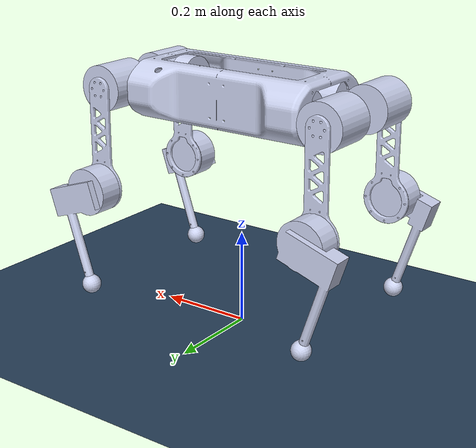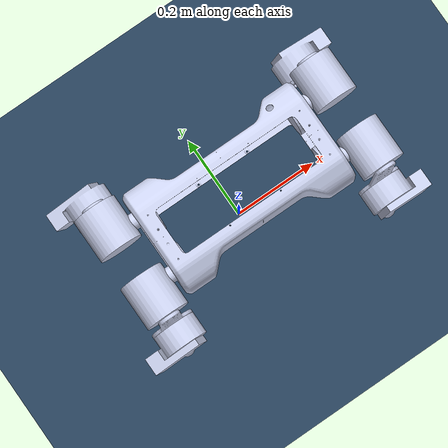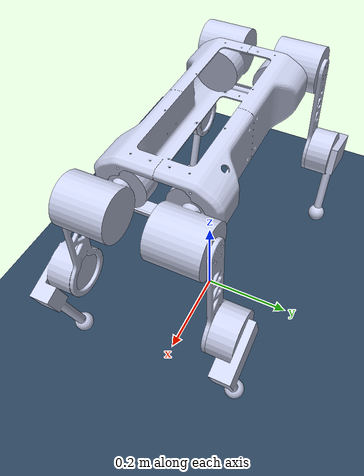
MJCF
<mujoco model="bigreddog_plus_scene">
  <include file="bigreddog_plus.xml"/>

  <statistic center="0 0 0.25" extent="1.2"/>

  <visual>
    <headlight diffuse="0.6 0.6 0.6" ambient="0.3 0.3 0.3" specular="0 0 0"/>
    <rgba haze="0.15 0.25 0.35 1"/>
    <global azimuth="90" elevation="-10"/>
  </visual>

  <asset>
    <texture type="skybox" builtin="gradient" rgb1="0.3 0.5 0.7" rgb2="0 0 0"
             width="512" height="3072"/>
    <!-- Matches the training scene's groundplane texture/material. -->
    <texture name="groundplane" type="2d" builtin="checker" mark="edge"
             rgb1="0.2 0.3 0.4" rgb2="0.1 0.2 0.3" markrgb="0.8 0.8 0.8"
             width="300" height="300"/>
    <material name="groundplane" texture="groundplane" texuniform="true"
              texrepeat="4 4" reflectance="0.2"/>
  </asset>

  <worldbody>
    <light name="sun" mode="fixed" directional="true" castshadow="true"
           pos="0 0 1.5" dir="0 0 -1"/>
    <!-- Named `terrain` like the training ground plane. The feet carry
         priority 1 with friction 0.6, so they set the contact friction. -->
    <geom name="terrain" type="plane" size="0 0 0.05" material="groundplane"
          condim="3" friction="0.6"/>
  </worldbody>

  <keyframe>
    <key name="home"
         qpos="0 0 0.5
               1 0 0 0
               -0.125 0.6 -1.0
                0.125 0.6 -1.0
               -0.125 -0.6 1.0
                0.125 -0.6 1.0"/>
  </keyframe>
</mujoco>

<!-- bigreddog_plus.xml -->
<mujoco model="bigreddog_plus">
  <compiler angle="radian" meshdir="meshes" autolimits="true"/>

  <default>
    <default class="bigreddog_plus">
      <geom friction="0.4" margin="0.001" condim="1"/>
      <joint damping="0.1" armature="0.01" frictionloss="0.2"/>
      <default class="visual">
        <geom type="mesh" contype="0" conaffinity="0" group="2"
          material="body" density="0"/>
      </default>
      <default class="collision">
        <geom contype="0" conaffinity="1" group="3" condim="1"/>
        <default class="foot">
          <geom type="sphere" size="0.02" condim="3" priority="1"
            friction="0.6 0.005 0.0001"/>
        </default>
      </default>
      <!-- 40.5 N.m is the training IdealPdActuatorCfg effort_limit. Split by
        joint type so the limits can diverge later. -->
      <default class="hip">
        <motor ctrlrange="-40.5 40.5"/>
      </default>
      <default class="thigh">
        <motor ctrlrange="-40.5 40.5"/>
      </default>
      <default class="calf">
        <motor ctrlrange="-40.5 40.5"/>
      </default>
    </default>
  </default>

  <asset>
    <material name="body" rgba="0.792157 0.819608 0.929412 1"/>
    <mesh name="base_link_mesh" file="base_link.STL"/>
    <mesh name="FL_hip_link_mesh" file="FL_hip_link.STL"/>
    <mesh name="FL_thigh_link_mesh" file="FL_thigh_link.STL"/>
    <mesh name="FL_calf_link_mesh" file="FL_calf_link.STL"/>
    <mesh name="FR_hip_link_mesh" file="FR_hip_link.STL"/>
    <mesh name="FR_thigh_link_mesh" file="FR_thigh_link.STL"/>
    <mesh name="FR_calf_link_mesh" file="FR_calf_link.STL"/>
    <mesh name="RL_hip_link_mesh" file="RL_hip_link.STL"/>
    <mesh name="RL_thigh_link_mesh" file="RL_thigh_link.STL"/>
    <mesh name="RL_calf_link_mesh" file="RL_calf_link.STL"/>
    <mesh name="RR_hip_link_mesh" file="RR_hip_link.STL"/>
    <mesh name="RR_thigh_link_mesh" file="RR_thigh_link.STL"/>
    <mesh name="RR_calf_link_mesh" file="RR_calf_link.STL"/>
  </asset>

  <worldbody>
    <body name="base_link" pos="0 0 0.5" childclass="bigreddog_plus">
      <inertial pos="-0.00014561 -0.00009835 -0.00003058" mass="5.2"
        fullinertia="0.04605119 0.11846756 0.14463111 0.00007072 0.00003588 0.00002386"/>
      <freejoint name="floating_base_joint"/>
      <geom class="visual" mesh="base_link_mesh"/>
      <geom name="base_collision" class="collision" type="box"
        size="0.208 0.121 0.0635"/>
      <site name="imu" size="0.01" group="5"/>

      <body name="FL_hip_link" pos="0.205 0.0655 0">
        <inertial pos="0.03811454 0.01253389 0" mass="0.69"
          fullinertia="0.00095370 0.00159060 0.00173304 -0.00019117 -0.0000001 -0.0000001"/>
        <joint name="FL_hip_joint" axis="1 0 0" range="-1.0472 1.0472"/>
        <geom class="visual" mesh="FL_hip_link_mesh"/>
        <geom name="FL_hip_collision" class="collision" type="cylinder"
          size="0.05 0.045" pos="0.05892 0.02 0"
          quat="0.707105 -0.707108 0 0"/>
        <body name="FL_thigh_link" pos="0.060219 0.0665 0">
          <inertial pos="-0.00024981 0.004 -0.11109287" mass="1.095"
            fullinertia="0.00743413 0.00794121 0.00051848 -0.0000001 0.00000601 -0.0000001"/>
          <joint name="FL_thigh_joint" axis="0 1 0" range="-2.583 2.286"/>
          <geom class="visual" mesh="FL_thigh_link_mesh"/>
          <geom name="FL_thigh_collision_1" class="collision" type="box"
            size="0.025 0.009 0.1" pos="0 0.01 -0.088"/>
          <geom name="FL_thigh_collision_2" class="collision" type="cylinder"
            size="0.049 0.025" pos="0 0.03 -0.21"
            quat="0.707105 -0.707108 0 0"/>
          <body name="FL_calf_link" pos="0 0.008 -0.21">
            <inertial pos="0.01079720 0.03338606 -0.02026173" mass="1.11"
              fullinertia="0.00381491 0.00456397 0.00143809 -0.00015134 0.00017873 0.00023186"/>
            <joint name="FL_calf_joint" axis="0 1 0" range="-2.792 2.809"/>
            <geom class="visual" mesh="FL_calf_link_mesh"/>
            <geom name="FL_calf_collision_1" class="collision" type="box"
              size="0.0575 0.0075 0.03" pos="0.02625 0.06 -0.00955"
              quat="0.984813 0 0.173616 0"/>
            <geom name="FL_calf_collision_2" class="collision" type="cylinder"
              size="0.015 0.0725" pos="0.02919 0.04 -0.1197"
              quat="0.984813 0 0.173616 0"/>
            <body name="FL_foot" pos="0.005 0.04 -0.21">
              <inertial pos="0 0 0" mass="0.04"
                diaginertia="0.0000096 0.0000096 0.0000096"/>
              <geom name="FL_foot_collision" class="foot"/>
              <site name="FL_foot_site" size="0.01" group="5"/>
            </body>
          </body>
        </body>
      </body>

      <body name="FR_hip_link" pos="0.205 -0.0655 0">
        <inertial pos="0.03811451 -0.01253389 0" mass="0.69"
          fullinertia="0.00095370 0.00159060 0.00173304 0.00019117 -0.0000001 -0.0000001"/>
        <joint name="FR_hip_joint" axis="1 0 0" range="-1.0472 1.0472"/>
        <geom class="visual" mesh="FR_hip_link_mesh"/>
        <geom name="FR_hip_collision" class="collision" type="cylinder"
          size="0.05 0.045" pos="0.05892 -0.02 0"
          quat="0.707105 -0.707108 0 0"/>
        <body name="FR_thigh_link" pos="0.060219 -0.0665 0">
          <inertial pos="-0.00024875 -0.00400001 -0.11109627" mass="1.095"
            fullinertia="0.00743428 0.00794107 0.00051820 -0.0000001 0.00000620 -0.0000001"/>
          <joint name="FR_thigh_joint" axis="0 1 0" range="-2.583 2.286"/>
          <geom class="visual" mesh="FR_thigh_link_mesh"/>
          <geom name="FR_thigh_collision_1" class="collision" type="box"
            size="0.025 0.009 0.1" pos="0 -0.01 -0.088"/>
          <geom name="FR_thigh_collision_2" class="collision" type="cylinder"
            size="0.049 0.025" pos="0 -0.03 -0.21"
            quat="0.707105 -0.707108 0 0"/>
          <body name="FR_calf_link" pos="0 -0.008 -0.21">
            <inertial pos="0.01079710 -0.03338602 -0.02026157" mass="1.11"
              fullinertia="0.00381492 0.00456398 0.00143809 0.00015134 0.00017872 -0.00023186"/>
            <joint name="FR_calf_joint" axis="0 1 0" range="-2.792 2.809"/>
            <geom class="visual" mesh="FR_calf_link_mesh"/>
            <geom name="FR_calf_collision_1" class="collision" type="box"
              size="0.0575 0.0075 0.03" pos="0.02625 -0.06 -0.00955"
              quat="0.984813 0 0.173616 0"/>
            <geom name="FR_calf_collision_2" class="collision" type="cylinder"
              size="0.015 0.0725" pos="0.02919 -0.04 -0.1197"
              quat="0.984813 0 0.173616 0"/>
            <body name="FR_foot" pos="0.005 -0.04 -0.21">
              <inertial pos="0 0 0" mass="0.04"
                diaginertia="0.0000096 0.0000096 0.0000096"/>
              <geom name="FR_foot_collision" class="foot"/>
              <site name="FR_foot_site" size="0.01" group="5"/>
            </body>
          </body>
        </body>
      </body>

      <body name="RL_hip_link" pos="-0.205 0.0655 0">
        <inertial pos="-0.03811451 0.01253389 0" mass="0.69"
          fullinertia="0.00095370 0.00159060 0.00173304 0.00019117 -0.0000001 -0.0000001"/>
        <joint name="RL_hip_joint" axis="1 0 0" range="-1.0472 1.0472"/>
        <geom class="visual" mesh="RL_hip_link_mesh"/>
        <geom name="RL_hip_collision" class="collision" type="cylinder"
          size="0.05 0.045" pos="-0.05892 0.02 0"
          quat="0.707105 -0.707108 0 0"/>
        <body name="RL_thigh_link" pos="-0.060219 0.0665 0">
          <inertial pos="0.00024822 0.004 -0.11109623" mass="1.095"
            fullinertia="0.00743433 0.00794121 0.00051829 -0.0000001 -0.00000622 -0.0000001"/>
          <joint name="RL_thigh_joint" axis="0 1 0" range="-2.583 2.286"/>
          <geom class="visual" mesh="RL_thigh_link_mesh"/>
          <geom name="RL_thigh_collision_1" class="collision" type="box"
            size="0.025 0.009 0.1" pos="0 0.01 -0.088"/>
          <geom name="RL_thigh_collision_2" class="collision" type="cylinder"
            size="0.049 0.025" pos="0 0.03 -0.21"
            quat="0.707105 -0.707108 0 0"/>
          <body name="RL_calf_link" pos="0 0.008 -0.21">
            <inertial pos="-0.01079704 0.03338606 -0.02026155" mass="1.11"
              fullinertia="0.00381492 0.00456397 0.00143809 0.00015134 -0.00017872 0.00023186"/>
            <joint name="RL_calf_joint" axis="0 1 0" range="-2.792 2.809"/>
            <geom class="visual" mesh="RL_calf_link_mesh"/>
            <geom name="RL_calf_collision_1" class="collision" type="box"
              size="0.0575 0.0075 0.03" pos="-0.02625 0.06 -0.00955"
              quat="0.984813 0 -0.173616 0"/>
            <geom name="RL_calf_collision_2" class="collision" type="cylinder"
              size="0.015 0.0725" pos="-0.02919 0.04 -0.1197"
              quat="0.984813 0 -0.173616 0"/>
            <body name="RL_foot" pos="-0.005 0.04 -0.21">
              <inertial pos="0 0 0" mass="0.04"
                diaginertia="0.0000096 0.0000096 0.0000096"/>
              <geom name="RL_foot_collision" class="foot"/>
              <site name="RL_foot_site" size="0.01" group="5"/>
            </body>
          </body>
        </body>
      </body>

      <body name="RR_hip_link" pos="-0.205 -0.0655 0">
        <inertial pos="-0.03811454 -0.01253389 0" mass="0.69"
          fullinertia="0.00095370 0.00159060 0.00173304 -0.00019117 -0.0000001 -0.0000001"/>
        <joint name="RR_hip_joint" axis="1 0 0" range="-1.0472 1.0472"/>
        <geom class="visual" mesh="RR_hip_link_mesh"/>
        <geom name="RR_hip_collision" class="collision" type="cylinder"
          size="0.05 0.045" pos="-0.05892 -0.02 0"
          quat="0.707105 -0.707108 0 0"/>
        <body name="RR_thigh_link" pos="-0.060219 -0.0665 0">
          <inertial pos="0.00025231 -0.00400001 -0.11108853" mass="1.095"
            fullinertia="0.00743362 0.00794097 0.00051875 -0.0000001 -0.00000569 -0.0000001"/>
          <joint name="RR_thigh_joint" axis="0 1 0" range="-2.583 2.286"/>
          <geom class="visual" mesh="RR_thigh_link_mesh"/>
          <geom name="RR_thigh_collision_1" class="collision" type="box"
            size="0.025 0.009 0.1" pos="0 -0.01 -0.088"/>
          <geom name="RR_thigh_collision_2" class="collision" type="cylinder"
            size="0.049 0.025" pos="0 -0.03 -0.21"
            quat="0.707105 -0.707108 0 0"/>
          <body name="RR_calf_link" pos="0 -0.008 -0.21">
            <inertial pos="-0.01079710 -0.03338606 -0.02026157" mass="1.11"
              fullinertia="0.00381491 0.00456398 0.00143808 -0.00015134 -0.00017872 -0.00023186"/>
            <joint name="RR_calf_joint" axis="0 1 0" range="-2.792 2.809"/>
            <geom class="visual" mesh="RR_calf_link_mesh"/>
            <geom name="RR_calf_collision_1" class="collision" type="box"
              size="0.0575 0.0075 0.03" pos="-0.02625 -0.06 -0.00955"
              quat="0.984813 0 -0.173616 0"/>
            <geom name="RR_calf_collision_2" class="collision" type="cylinder"
              size="0.015 0.0725" pos="-0.02919 -0.04 -0.1197"
              quat="0.984813 0 -0.173616 0"/>
            <body name="RR_foot" pos="-0.005 -0.04 -0.21">
              <inertial pos="0 0 0" mass="0.04"
                diaginertia="0.0000096 0.0000096 0.0000096"/>
              <geom name="RR_foot_collision" class="foot"/>
              <site name="RR_foot_site" size="0.01" group="5"/>
            </body>
          </body>
        </body>
      </body>
    </body>
  </worldbody>

  <actuator>
    <motor class="hip" name="FL_hip" joint="FL_hip_joint" />
    <motor class="thigh" name="FL_thigh" joint="FL_thigh_joint" />
    <motor class="calf" name="FL_calf" joint="FL_calf_joint" />

    <motor class="hip" name="FR_hip" joint="FR_hip_joint" />
    <motor class="thigh" name="FR_thigh" joint="FR_thigh_joint" />
    <motor class="calf" name="FR_calf" joint="FR_calf_joint" />

    <motor class="hip" name="RL_hip" joint="RL_hip_joint" />
    <motor class="thigh" name="RL_thigh" joint="RL_thigh_joint" />
    <motor class="calf" name="RL_calf" joint="RL_calf_joint" />

    <motor class="hip" name="RR_hip" joint="RR_hip_joint" />
    <motor class="thigh" name="RR_thigh" joint="RR_thigh_joint" />
    <motor class="calf" name="RR_calf" joint="RR_calf_joint" />
  </actuator>

  <sensor>
    <jointpos name="FL_hip_pos" joint="FL_hip_joint" />
    <jointpos name="FL_thigh_pos" joint="FL_thigh_joint" />
    <jointpos name="FL_calf_pos" joint="FL_calf_joint" />

    <jointpos name="FR_hip_pos" joint="FR_hip_joint" />
    <jointpos name="FR_thigh_pos" joint="FR_thigh_joint" />
    <jointpos name="FR_calf_pos" joint="FR_calf_joint" />
    <jointpos name="RL_hip_pos" joint="RL_hip_joint" />
    <jointpos name="RL_thigh_pos" joint="RL_thigh_joint" />
    <jointpos name="RL_calf_pos" joint="RL_calf_joint" />

    <jointpos name="RR_hip_pos" joint="RR_hip_joint" />
    <jointpos name="RR_thigh_pos" joint="RR_thigh_joint" />
    <jointpos name="RR_calf_pos" joint="RR_calf_joint" />

    <jointvel name="FL_hip_vel" joint="FL_hip_joint" />
    <jointvel name="FL_thigh_vel" joint="FL_thigh_joint" />
    <jointvel name="FL_calf_vel" joint="FL_calf_joint" />

    <jointvel name="FR_hip_vel" joint="FR_hip_joint" />
    <jointvel name="FR_thigh_vel" joint="FR_thigh_joint" />
    <jointvel name="FR_calf_vel" joint="FR_calf_joint" />
    <jointvel name="RL_hip_vel" joint="RL_hip_joint" />
    <jointvel name="RL_thigh_vel" joint="RL_thigh_joint" />
    <jointvel name="RL_calf_vel" joint="RL_calf_joint" />

    <jointvel name="RR_hip_vel" joint="RR_hip_joint" />
    <jointvel name="RR_thigh_vel" joint="RR_thigh_joint" />
    <jointvel name="RR_calf_vel" joint="RR_calf_joint" />

    <jointactuatorfrc name="FL_hip_torque" joint="FL_hip_joint" noise="0.01" />
    <jointactuatorfrc name="FL_thigh_torque" joint="FL_thigh_joint" noise="0.01" />
    <jointactuatorfrc name="FL_calf_torque" joint="FL_calf_joint" noise="0.01" />

    <jointactuatorfrc name="FR_hip_torque" joint="FR_hip_joint" noise="0.01" />
    <jointactuatorfrc name="FR_thigh_torque" joint="FR_thigh_joint" noise="0.01" />
    <jointactuatorfrc name="FR_calf_torque" joint="FR_calf_joint" noise="0.01" />
    <jointactuatorfrc name="RL_hip_torque" joint="RL_hip_joint" noise="0.01" />
    <jointactuatorfrc name="RL_thigh_torque" joint="RL_thigh_joint" noise="0.01" />
    <jointactuatorfrc name="RL_calf_torque" joint="RL_calf_joint" noise="0.01" />

    <jointactuatorfrc name="RR_hip_torque" joint="RR_hip_joint" noise="0.01" />
    <jointactuatorfrc name="RR_thigh_torque" joint="RR_thigh_joint" noise="0.01" />
    <jointactuatorfrc name="RR_calf_torque" joint="RR_calf_joint" noise="0.01" />

    <framequat name="imu_quat" objtype="site" objname="imu" />
    <gyro name="imu_gyro" site="imu" />
    <accelerometer name="imu_acc" site="imu" />

    <framepos name="frame_pos" objtype="site" objname="imu" />
    <framelinvel name="frame_vel" objtype="site" objname="imu" />
    <frameangvel name="frame_ang_vel" objtype="site" objname="imu" />
  </sensor>
</mujoco>
